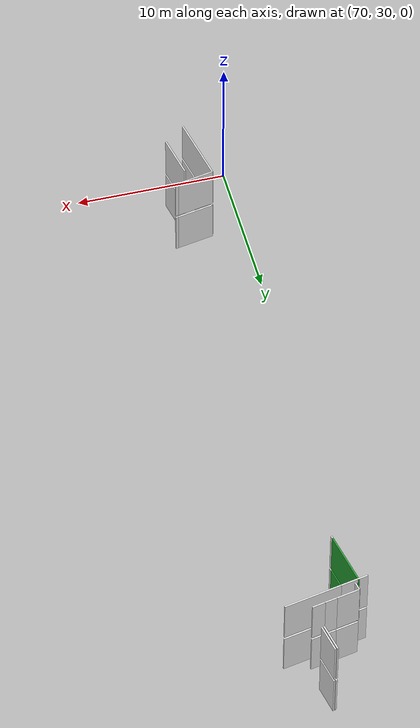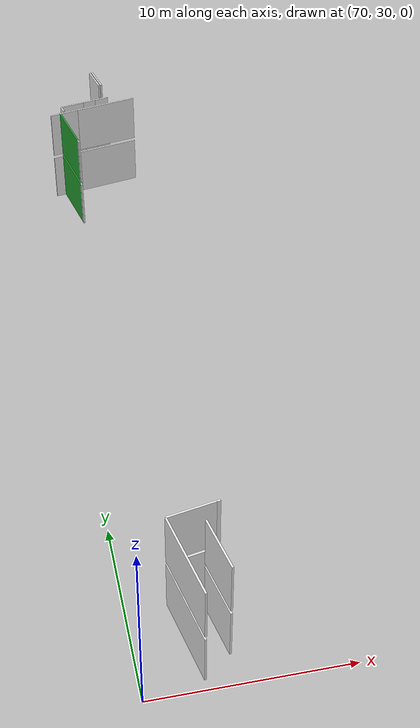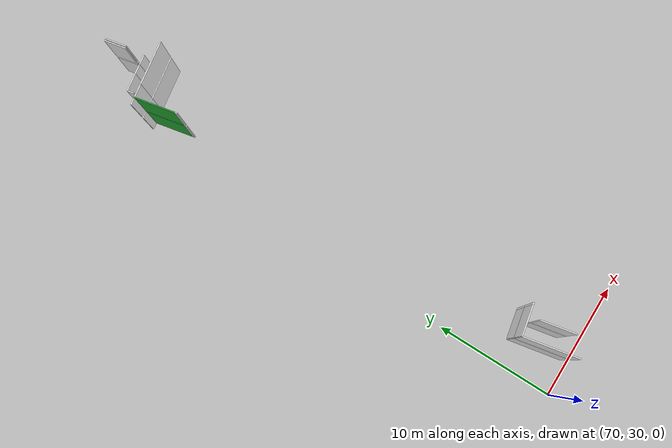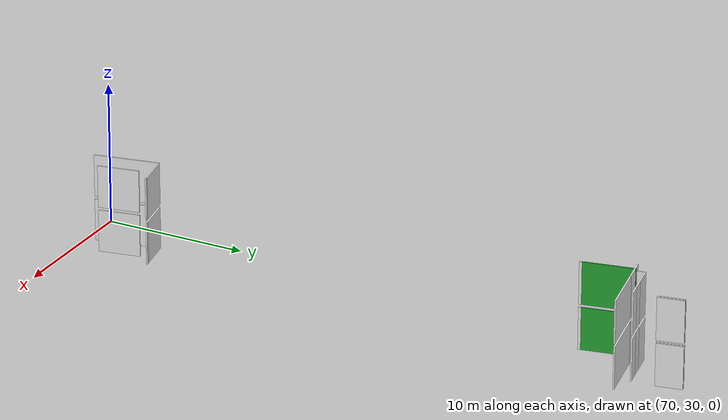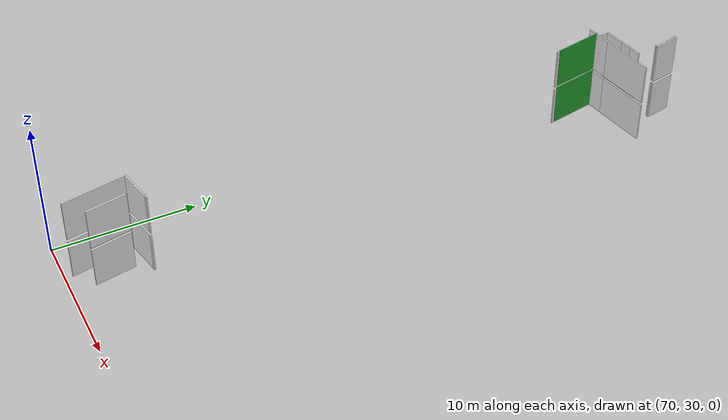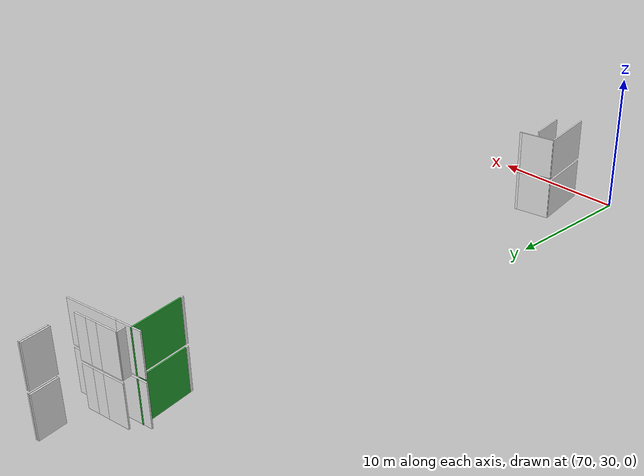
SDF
<sdf version="1.6">
 <world name="default">
  <model name="wall_72.2_68.0_0.0">
   <static>true</static>
   <pose>72.16500000003725 68.04500000015832 1.5 0 0 1.767083239622093</pose>
   <link name="link">
    <visual name="visual">
     <geometry><box><size>3.5379372523187618 0.1 3</size></box></geometry>
     <material>
      <script><uri>file://media/materials/scripts/gazebo.material</uri><name>Gazebo/Green</name></script>
     </material>
    </visual>
   </link>
  </model>
  <model name="wall_74.8_73.6_0.0">
   <static>true</static>
   <pose>74.76000000000931 73.60999999986961 1.5 0 0 -1.3734007669325783</pose>
   <link name="link">
    <visual name="visual">
     <geometry><box><size>1.8356470247080154 0.1 3</size></box></geometry>
     <material>
      <script><uri>file://media/materials/scripts/gazebo.material</uri><name>Gazebo/White</name></script>
     </material>
    </visual>
   </link>
  </model>
  <model name="wall_74.6_73.6_0.0">
   <static>true</static>
   <pose>74.60999999998603 73.5800000000745 1.5 0 0 1.7681918866572148</pose>
   <link name="link">
    <visual name="visual">
     <geometry><box><size>1.8356470247080154 0.1 3</size></box></geometry>
     <material>
      <script><uri>file://media/materials/scripts/gazebo.material</uri><name>Gazebo/White</name></script>
     </material>
    </visual>
   </link>
  </model>
  <model name="wall_72.7_70.6_0.0">
   <static>true</static>
   <pose>72.72500000000582 70.64500000001863 1.5 0 0 0.19477776480304612</pose>
   <link name="link">
    <visual name="visual">
     <geometry><box><size>1.4983324064140755 0.1 3</size></box></geometry>
     <material>
      <script><uri>file://media/materials/scripts/gazebo.material</uri><name>Gazebo/White</name></script>
     </material>
    </visual>
   </link>
  </model>
  <model name="wall_73.9_70.9_0.0">
   <static>true</static>
   <pose>73.85500000001048 70.86499999999069 1.5 0 0 0.18763977169544066</pose>
   <link name="link">
    <visual name="visual">
     <geometry><box><size>0.8041144196810251 0.1 3</size></box></geometry>
     <material>
      <script><uri>file://media/materials/scripts/gazebo.material</uri><name>Gazebo/White</name></script>
     </material>
    </visual>
   </link>
  </model>
  <model name="wall_74.7_71.0_0.0">
   <static>true</static>
   <pose>74.67499999998836 71.02499999990687 1.5 0 0 0.19739555977086584</pose>
   <link name="link">
    <visual name="visual">
     <geometry><box><size>0.8668333172733308 0.1 3</size></box></geometry>
     <material>
      <script><uri>file://media/materials/scripts/gazebo.material</uri><name>Gazebo/White</name></script>
     </material>
    </visual>
   </link>
  </model>
  <model name="wall_72.1_69.8_0.0">
   <static>true</static>
   <pose>72.08499999999185 69.75500000012107 1.5 0 0 0.19522165028584915</pose>
   <link name="link">
    <visual name="visual">
     <geometry><box><size>1.804272706639735 0.1 3</size></box></geometry>
     <material>
      <script><uri>file://media/materials/scripts/gazebo.material</uri><name>Gazebo/White</name></script>
     </material>
    </visual>
   </link>
  </model>
  <model name="wall_74.8_70.3_0.0">
   <static>true</static>
   <pose>74.83999999999651 70.30000000004657 1.5 0 0 0.19533794952017633</pose>
   <link name="link">
    <visual name="visual">
     <geometry><box><size>3.8125057377015654 0.1 3</size></box></geometry>
     <material>
      <script><uri>file://media/materials/scripts/gazebo.material</uri><name>Gazebo/White</name></script>
     </material>
    </visual>
   </link>
  </model>
  <model name="wall_74.1_33.1_0.0">
   <static>true</static>
   <pose>74.06999999997788 33.06499999994412 1.5 0 0 1.7661524605065864</pose>
   <link name="link">
    <visual name="visual">
     <geometry><box><size>2.8848743474229677 0.1 3</size></box></geometry>
     <material>
      <script><uri>file://media/materials/scripts/gazebo.material</uri><name>Gazebo/White</name></script>
     </material>
    </visual>
   </link>
  </model>
  <model name="wall_72.5_66.2_0.0">
   <static>true</static>
   <pose>72.52999999999884 66.21500000008382 1.5 0 0 1.77829255318378</pose>
   <link name="link">
    <visual name="visual">
     <geometry><box><size>0.19416487833047835 0.1 3</size></box></geometry>
     <material>
      <script><uri>file://media/materials/scripts/gazebo.material</uri><name>Gazebo/White</name></script>
     </material>
    </visual>
   </link>
  </model>
  <model name="wall_74.6_35.5_0.0">
   <static>true</static>
   <pose>74.58499999999185 35.485000000102445 1.5 0 0 -2.9849907776618085</pose>
   <link name="link">
    <visual name="visual">
     <geometry><box><size>0.19235384058705793 0.1 3</size></box></geometry>
     <material>
      <script><uri>file://media/materials/scripts/gazebo.material</uri><name>Gazebo/White</name></script>
     </material>
    </visual>
   </link>
  </model>
  <model name="wall_73.3_35.2_0.0">
   <static>true</static>
   <pose>73.27499999999418 35.230000000214204 1.5 0 0 -2.946572386191703</pose>
   <link name="link">
    <visual name="visual">
     <geometry><box><size>2.4769537742856995 0.1 3</size></box></geometry>
     <material>
      <script><uri>file://media/materials/scripts/gazebo.material</uri><name>Gazebo/White</name></script>
     </material>
    </visual>
   </link>
  </model>
  <model name="wall_72.5_32.8_0.0">
   <static>true</static>
   <pose>72.5 32.765000000130385 1.5 0 0 -1.3755624583535375</pose>
   <link name="link">
    <visual name="visual">
     <geometry><box><size>4.536176804498029 0.1 3</size></box></geometry>
     <material>
      <script><uri>file://media/materials/scripts/gazebo.material</uri><name>Gazebo/White</name></script>
     </material>
    </visual>
   </link>
  </model>
  <model name="wall_72.2_68.0_3.2">
   <static>true</static>
   <pose>72.16500000003725 68.04500000015832 4.7 0 0 1.767083239622093</pose>
   <link name="link">
    <visual name="visual">
     <geometry><box><size>3.5379372523187618 0.1 3</size></box></geometry>
     <material>
      <script><uri>file://media/materials/scripts/gazebo.material</uri><name>Gazebo/Green</name></script>
     </material>
    </visual>
   </link>
  </model>
  <model name="wall_74.8_73.6_3.2">
   <static>true</static>
   <pose>74.76000000000931 73.60999999986961 4.7 0 0 -1.3734007669325783</pose>
   <link name="link">
    <visual name="visual">
     <geometry><box><size>1.8356470247080154 0.1 3</size></box></geometry>
     <material>
      <script><uri>file://media/materials/scripts/gazebo.material</uri><name>Gazebo/White</name></script>
     </material>
    </visual>
   </link>
  </model>
  <model name="wall_74.6_73.6_3.2">
   <static>true</static>
   <pose>74.60999999998603 73.5800000000745 4.7 0 0 1.7681918866572148</pose>
   <link name="link">
    <visual name="visual">
     <geometry><box><size>1.8356470247080154 0.1 3</size></box></geometry>
     <material>
      <script><uri>file://media/materials/scripts/gazebo.material</uri><name>Gazebo/White</name></script>
     </material>
    </visual>
   </link>
  </model>
  <model name="wall_72.0_70.2_3.2">
   <static>true</static>
   <pose>72.04000000000815 70.22999999998137 4.7 0 0 1.7539071441075598</pose>
   <link name="link">
    <visual name="visual">
     <geometry><box><size>0.5491812087528287 0.1 3</size></box></geometry>
     <material>
      <script><uri>file://media/materials/scripts/gazebo.material</uri><name>Gazebo/White</name></script>
     </material>
    </visual>
   </link>
  </model>
  <model name="wall_72.7_70.6_3.2">
   <static>true</static>
   <pose>72.72500000000582 70.64500000001863 4.7 0 0 0.19477776480304612</pose>
   <link name="link">
    <visual name="visual">
     <geometry><box><size>1.4983324064140755 0.1 3</size></box></geometry>
     <material>
      <script><uri>file://media/materials/scripts/gazebo.material</uri><name>Gazebo/White</name></script>
     </material>
    </visual>
   </link>
  </model>
  <model name="wall_73.9_70.9_3.2">
   <static>true</static>
   <pose>73.85500000001048 70.86499999999069 4.7 0 0 0.18763977169544066</pose>
   <link name="link">
    <visual name="visual">
     <geometry><box><size>0.8041144196810251 0.1 3</size></box></geometry>
     <material>
      <script><uri>file://media/materials/scripts/gazebo.material</uri><name>Gazebo/White</name></script>
     </material>
    </visual>
   </link>
  </model>
  <model name="wall_74.7_71.0_3.2">
   <static>true</static>
   <pose>74.67499999998836 71.02499999990687 4.7 0 0 0.19739555977086584</pose>
   <link name="link">
    <visual name="visual">
     <geometry><box><size>0.8668333172733308 0.1 3</size></box></geometry>
     <material>
      <script><uri>file://media/materials/scripts/gazebo.material</uri><name>Gazebo/White</name></script>
     </material>
    </visual>
   </link>
  </model>
  <model name="wall_72.1_69.8_3.2">
   <static>true</static>
   <pose>72.08499999999185 69.75500000012107 4.7 0 0 0.19522165028584915</pose>
   <link name="link">
    <visual name="visual">
     <geometry><box><size>1.804272706639735 0.1 3</size></box></geometry>
     <material>
      <script><uri>file://media/materials/scripts/gazebo.material</uri><name>Gazebo/White</name></script>
     </material>
    </visual>
   </link>
  </model>
  <model name="wall_74.8_70.3_3.2">
   <static>true</static>
   <pose>74.83999999999651 70.30000000004657 4.7 0 0 0.19533794952017633</pose>
   <link name="link">
    <visual name="visual">
     <geometry><box><size>3.8125057377015654 0.1 3</size></box></geometry>
     <material>
      <script><uri>file://media/materials/scripts/gazebo.material</uri><name>Gazebo/White</name></script>
     </material>
    </visual>
   </link>
  </model>
  <model name="wall_74.1_33.1_3.2">
   <static>true</static>
   <pose>74.06999999997788 33.06499999994412 4.7 0 0 1.7661524605065864</pose>
   <link name="link">
    <visual name="visual">
     <geometry><box><size>2.8848743474229677 0.1 3</size></box></geometry>
     <material>
      <script><uri>file://media/materials/scripts/gazebo.material</uri><name>Gazebo/White</name></script>
     </material>
    </visual>
   </link>
  </model>
  <model name="wall_72.5_66.2_3.2">
   <static>true</static>
   <pose>72.52999999999884 66.21500000008382 4.7 0 0 1.77829255318378</pose>
   <link name="link">
    <visual name="visual">
     <geometry><box><size>0.19416487833047835 0.1 3</size></box></geometry>
     <material>
      <script><uri>file://media/materials/scripts/gazebo.material</uri><name>Gazebo/White</name></script>
     </material>
    </visual>
   </link>
  </model>
  <model name="wall_74.6_35.5_3.2">
   <static>true</static>
   <pose>74.58499999999185 35.485000000102445 4.7 0 0 -2.9849907776618085</pose>
   <link name="link">
    <visual name="visual">
     <geometry><box><size>0.19235384058705793 0.1 3</size></box></geometry>
     <material>
      <script><uri>file://media/materials/scripts/gazebo.material</uri><name>Gazebo/White</name></script>
     </material>
    </visual>
   </link>
  </model>
  <model name="wall_73.3_35.2_3.2">
   <static>true</static>
   <pose>73.27499999999418 35.230000000214204 4.7 0 0 -2.946572386191703</pose>
   <link name="link">
    <visual name="visual">
     <geometry><box><size>2.4769537742856995 0.1 3</size></box></geometry>
     <material>
      <script><uri>file://media/materials/scripts/gazebo.material</uri><name>Gazebo/White</name></script>
     </material>
    </visual>
   </link>
  </model>
  <model name="wall_72.5_32.8_3.2">
   <static>true</static>
   <pose>72.5 32.765000000130385 4.7 0 0 -1.3755624583535375</pose>
   <link name="link">
    <visual name="visual">
     <geometry><box><size>4.536176804498029 0.1 3</size></box></geometry>
     <material>
      <script><uri>file://media/materials/scripts/gazebo.material</uri><name>Gazebo/White</name></script>
     </material>
    </visual>
   </link>
  </model>
 </world>
</sdf>
